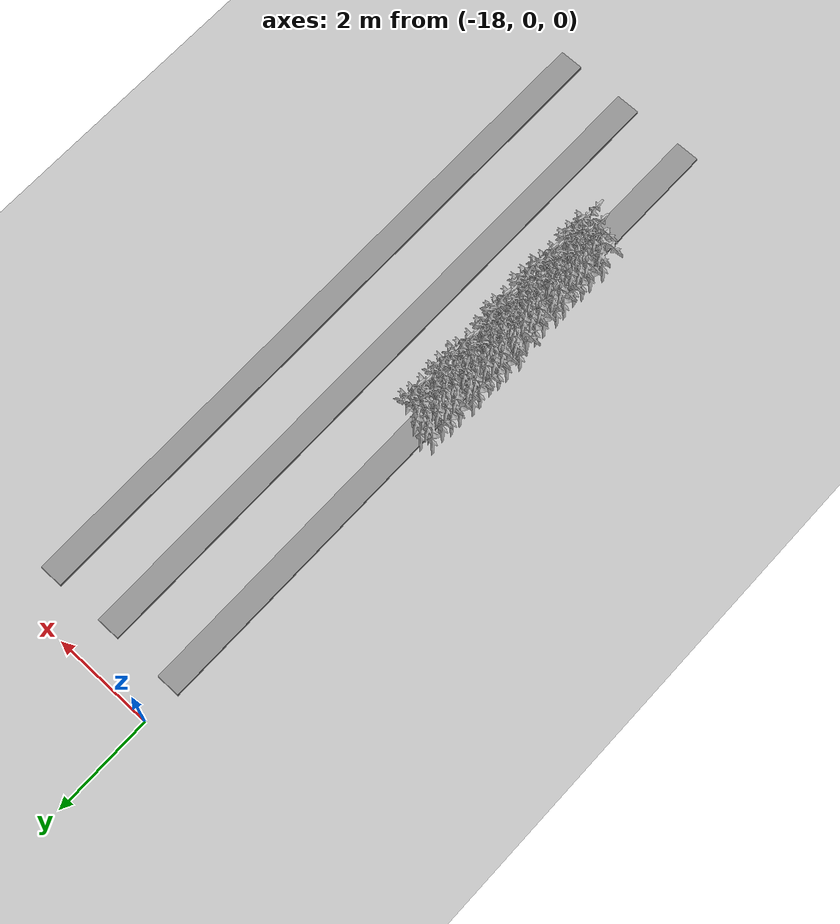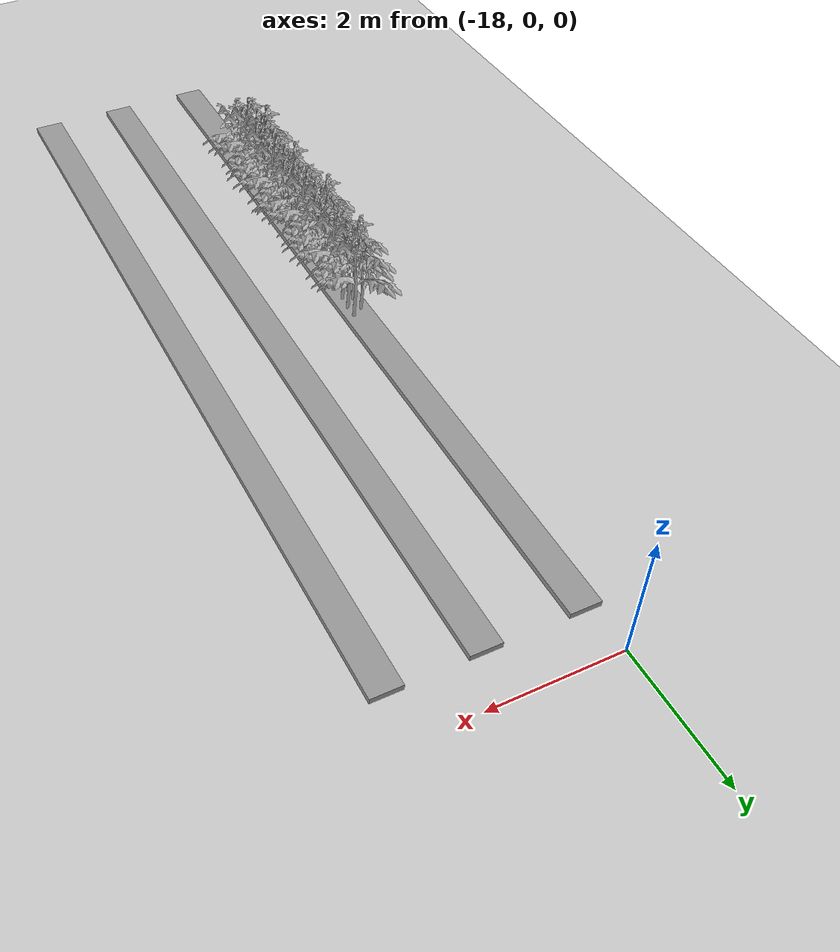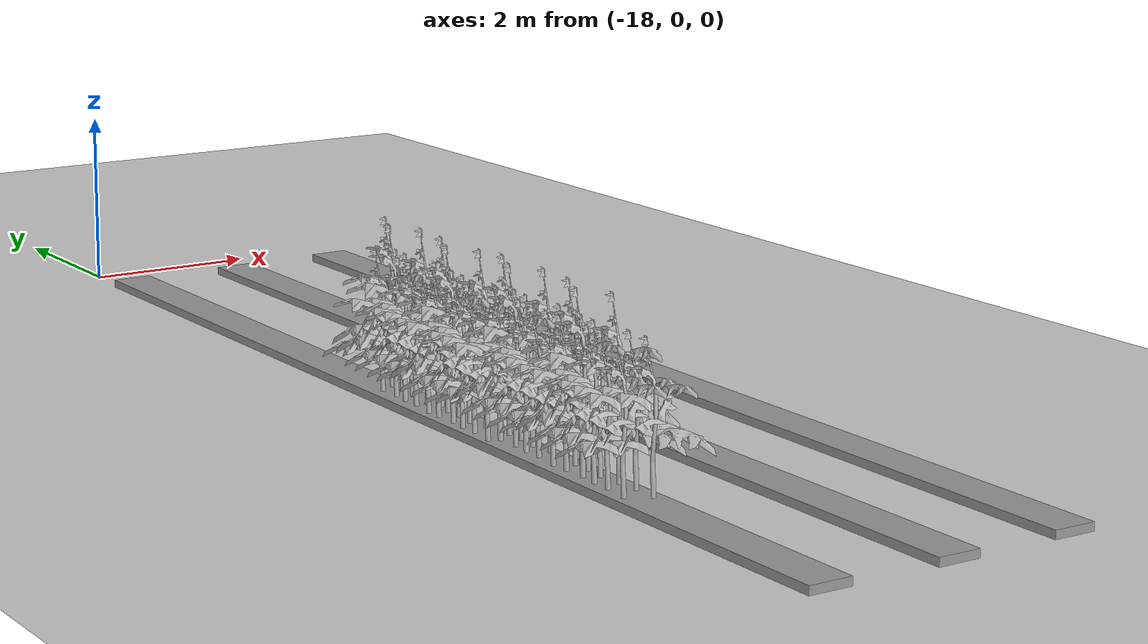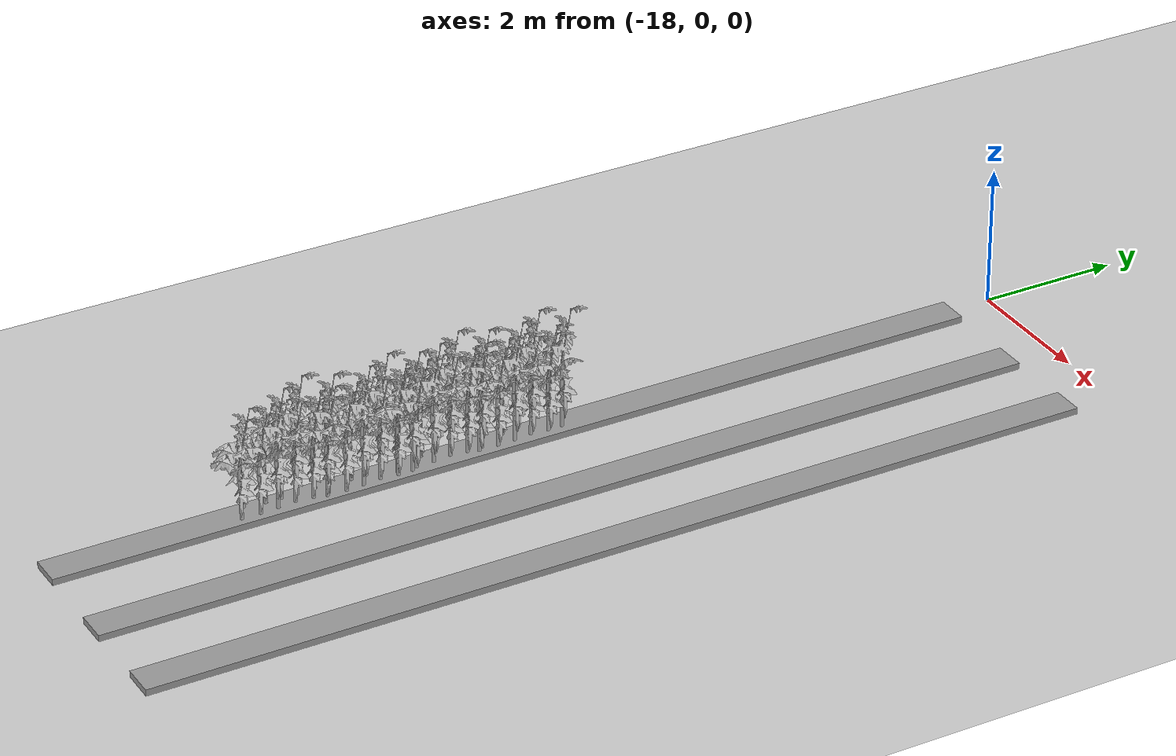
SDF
<sdf version="1.6">
 <world name="default">
  <model name="ground_plane">
   <static>1</static>
   <link name="link">
    <collision name="collision">
     <geometry><plane><normal>0 0 1</normal><size>100 100</size></plane></geometry>
     <surface>
      <contact><collide_bitmask>65535</collide_bitmask></contact>
      <friction><ode><mu>100</mu><mu2>50</mu2></ode></friction>
     </surface>
    </collision>
    <visual name="visual">
     <cast_shadows>0</cast_shadows>
     <geometry><plane><normal>0 0 1</normal><size>100 100</size></plane></geometry>
     <material>
      <script><uri>file://media/materials/scripts/gazebo.material</uri><name>Gazebo/Grey</name></script>
     </material>
    </visual>
   </link>
  </model>
  <model name="Box_24x15W_0">
   <link name="Wall">
    <pose>0 0 0.1985 0 -0 0</pose>
    <inertial>
     <mass>5</mass>
     <inertia><ixx>0.1022</ixx><iyy>0.2197</iyy><izz>0.1905</izz><ixy>0</ixy><ixz>0</ixz><iyz>0</iyz></inertia>
    </inertial>
    <collision name="Wall_Collision">
     <geometry><box><size>0.470639 13.5 0.091294</size></box></geometry>
    </collision>
    <visual name="Wall_Visual">
     <geometry><box><size>0.470639 13.5 0.091294</size></box></geometry>
     <material>
      <script><uri>file://media/materials/scripts/gazebo.material</uri><name>Gazebo/Grey</name></script>
      <ambient>1 1 1 1</ambient>
     </material>
    </visual>
   </link>
   <static>1</static>
   <pose>-16.4388 -7.42472 -0.146343 0 -0 0</pose>
  </model>
  <model name="Box_24x15W">
   <link name="Wall">
    <pose>0 0 0.1985 0 -0 0</pose>
    <inertial>
     <mass>5</mass>
     <inertia><ixx>0.1022</ixx><iyy>0.2197</iyy><izz>0.1905</izz><ixy>0</ixy><ixz>0</ixz><iyz>0</iyz></inertia>
    </inertial>
    <collision name="Wall_Collision">
     <geometry><box><size>0.470639 13.5 0.091294</size></box></geometry>
    </collision>
    <visual name="Wall_Visual">
     <geometry><box><size>0.470639 13.5 0.091294</size></box></geometry>
     <material>
      <script><uri>file://media/materials/scripts/gazebo.material</uri><name>Gazebo/Grey</name></script>
      <ambient>1 1 1 1</ambient>
     </material>
    </visual>
   </link>
   <static>1</static>
   <pose>-17.8665 -7.42472 -0.14031 0 -0 0</pose>
  </model>
  <model name="Box_24x15W_0_clone">
   <link name="Wall">
    <pose>0 0 0.1985 0 -0 0</pose>
    <inertial>
     <mass>5</mass>
     <inertia><ixx>0.1022</ixx><iyy>0.2197</iyy><izz>0.1905</izz><ixy>0</ixy><ixz>0</ixz><iyz>0</iyz></inertia>
    </inertial>
    <collision name="Wall_Collision">
     <geometry><box><size>0.470639 13.5 0.091294</size></box></geometry>
    </collision>
    <visual name="Wall_Visual">
     <geometry><box><size>0.470639 13.5 0.091294</size></box></geometry>
     <material>
      <script><uri>file://media/materials/scripts/gazebo.material</uri><name>Gazebo/Grey</name></script>
      <ambient>1 1 1 1</ambient>
     </material>
    </visual>
   </link>
   <static>1</static>
   <pose>-15.0728 -7.40963 -0.140264 0 -0 0</pose>
  </model>
  <model name="Front_Plant_1_2">
   <model name="tomato_plant_medium">
    <static>1</static>
    <link name="link">
     <collision name="collision">
      <pose>0 0 0 1.5708 -0 0</pose>
      <geometry><mesh><scale>0.5 0.5 0.5</scale><uri>model://stick/meshes/stick.dae</uri></mesh></geometry>
     </collision>
     <visual name="visual">
      <geometry>
       <mesh><scale>5e-06 5e-06 6e-06</scale><uri>model://tomato_plant_medium/meshes/tomato-plant.dae</uri></mesh>
      </geometry>
     </visual>
    </link>
    <pose>0.087453 -0.595994 0.012396 0 -0 0</pose>
   </model>
   <model name="tomato_plant_medium_0">
    <static>1</static>
    <link name="link">
     <collision name="collision">
      <pose>0 0 0 1.5708 -0 0</pose>
      <geometry><mesh><scale>0.5 0.5 0.5</scale><uri>model://stick/meshes/stick.dae</uri></mesh></geometry>
     </collision>
     <visual name="visual">
      <geometry>
       <mesh><scale>5e-06 5e-06 6e-06</scale><uri>model://tomato_plant_medium/meshes/tomato-plant.dae</uri></mesh>
      </geometry>
     </visual>
    </link>
    <pose>-0.086166 -0.251822 0.012396 0 -0 0</pose>
   </model>
   <model name="tomato_plant_medium_1">
    <static>1</static>
    <link name="link">
     <collision name="collision">
      <pose>0 0 0 1.5708 -0 0</pose>
      <geometry><mesh><scale>0.5 0.5 0.5</scale><uri>model://stick/meshes/stick.dae</uri></mesh></geometry>
     </collision>
     <visual name="visual">
      <geometry>
       <mesh><scale>5e-06 5e-06 6e-06</scale><uri>model://tomato_plant_medium/meshes/tomato-plant.dae</uri></mesh>
      </geometry>
     </visual>
    </link>
    <pose>0.080199 0.118127 0.012396 0 -0 0</pose>
   </model>
   <model name="tomato_plant_small">
    <static>1</static>
    <link name="link">
     <collision name="collision">
      <pose>0 0 0 1.5708 -0 0</pose>
      <geometry><mesh><scale>0.5 0.45 0.5</scale><uri>model://stick/meshes/stick.dae</uri></mesh></geometry>
     </collision>
     <visual name="visual">
      <geometry>
       <mesh><scale>5e-06 5e-06 5e-06</scale><uri>model://tomato_plant_small/meshes/tomato-plant.dae</uri></mesh>
      </geometry>
     </visual>
    </link>
    <pose>0.099683 -1.12011 0.012396 0 -0 0</pose>
   </model>
   <model name="tomato_plant_small_0">
    <static>1</static>
    <link name="link">
     <collision name="collision">
      <pose>0 0 0 1.5708 -0 0</pose>
      <geometry><mesh><scale>0.5 0.45 0.5</scale><uri>model://stick/meshes/stick.dae</uri></mesh></geometry>
     </collision>
     <visual name="visual">
      <geometry>
       <mesh><scale>5e-06 5e-06 5e-06</scale><uri>model://tomato_plant_small/meshes/tomato-plant.dae</uri></mesh>
      </geometry>
     </visual>
    </link>
    <pose>-0.138771 -0.983982 0.012396 0 -0 0</pose>
   </model>
   <model name="tomato_plant_small_1">
    <static>1</static>
    <link name="link">
     <collision name="collision">
      <pose>0 0 0 1.5708 -0 0</pose>
      <geometry><mesh><scale>0.5 0.45 0.5</scale><uri>model://stick/meshes/stick.dae</uri></mesh></geometry>
     </collision>
     <visual name="visual">
      <geometry>
       <mesh><scale>5e-06 5e-06 5e-06</scale><uri>model://tomato_plant_small/meshes/tomato-plant.dae</uri></mesh>
      </geometry>
     </visual>
    </link>
    <pose>0.101334 -0.848814 0.012396 0 -0 0</pose>
   </model>
   <model name="tomato_plant_small_2">
    <static>1</static>
    <link name="link">
     <collision name="collision">
      <pose>0 0 0 1.5708 -0 0</pose>
      <geometry><mesh><scale>0.5 0.45 0.5</scale><uri>model://stick/meshes/stick.dae</uri></mesh></geometry>
     </collision>
     <visual name="visual">
      <geometry>
       <mesh><scale>5e-06 5e-06 5e-06</scale><uri>model://tomato_plant_small/meshes/tomato-plant.dae</uri></mesh>
      </geometry>
     </visual>
    </link>
    <pose>-0.103369 -0.683189 0.012396 0 -0 0</pose>
   </model>
   <model name="tomato_plant_small_3">
    <static>1</static>
    <link name="link">
     <collision name="collision">
      <pose>0 0 0 1.5708 -0 0</pose>
      <geometry><mesh><scale>0.5 0.45 0.5</scale><uri>model://stick/meshes/stick.dae</uri></mesh></geometry>
     </collision>
     <visual name="visual">
      <geometry>
       <mesh><scale>5e-06 5e-06 5e-06</scale><uri>model://tomato_plant_small/meshes/tomato-plant.dae</uri></mesh>
      </geometry>
     </visual>
    </link>
    <pose>-0.104381 -0.464811 0.012396 0 -0 0</pose>
   </model>
   <model name="tomato_plant_small_4">
    <static>1</static>
    <link name="link">
     <collision name="collision">
      <pose>0 0 0 1.5708 -0 0</pose>
      <geometry><mesh><scale>0.5 0.45 0.5</scale><uri>model://stick/meshes/stick.dae</uri></mesh></geometry>
     </collision>
     <visual name="visual">
      <geometry>
       <mesh><scale>5e-06 5e-06 5e-06</scale><uri>model://tomato_plant_small/meshes/tomato-plant.dae</uri></mesh>
      </geometry>
     </visual>
    </link>
    <pose>0.055604 -0.336879 0.012396 0 -0 0</pose>
   </model>
   <model name="tomato_plant_small_5">
    <static>1</static>
    <link name="link">
     <collision name="collision">
      <pose>0 0 0 1.5708 -0 0</pose>
      <geometry><mesh><scale>0.5 0.45 0.5</scale><uri>model://stick/meshes/stick.dae</uri></mesh></geometry>
     </collision>
     <visual name="visual">
      <geometry>
       <mesh><scale>5e-06 5e-06 5e-06</scale><uri>model://tomato_plant_small/meshes/tomato-plant.dae</uri></mesh>
      </geometry>
     </visual>
    </link>
    <pose>0.085059 -0.092572 0.012396 0 -0 0</pose>
   </model>
   <model name="tomato_plant_small_6">
    <static>1</static>
    <link name="link">
     <collision name="collision">
      <pose>0 0 0 1.5708 -0 0</pose>
      <geometry><mesh><scale>0.5 0.45 0.5</scale><uri>model://stick/meshes/stick.dae</uri></mesh></geometry>
     </collision>
     <visual name="visual">
      <geometry>
       <mesh><scale>5e-06 5e-06 5e-06</scale><uri>model://tomato_plant_small/meshes/tomato-plant.dae</uri></mesh>
      </geometry>
     </visual>
    </link>
    <pose>-0.096345 0.008888 0.012396 0 -0 0</pose>
   </model>
   <static>0</static>
   <pose>-17.8465 -10.4043 0 0 -0 0</pose>
  </model>
  <model name="Front_Plant_1_3">
   <model name="tomato_plant_medium">
    <static>1</static>
    <link name="link">
     <collision name="collision">
      <pose>0 0 0 1.5708 -0 0</pose>
      <geometry><mesh><scale>0.5 0.5 0.5</scale><uri>model://stick/meshes/stick.dae</uri></mesh></geometry>
     </collision>
     <visual name="visual">
      <geometry>
       <mesh><scale>5e-06 5e-06 6e-06</scale><uri>model://tomato_plant_medium/meshes/tomato-plant.dae</uri></mesh>
      </geometry>
     </visual>
    </link>
    <pose>0.087453 -0.595994 0.012396 0 -0 0</pose>
   </model>
   <model name="tomato_plant_medium_0">
    <static>1</static>
    <link name="link">
     <collision name="collision">
      <pose>0 0 0 1.5708 -0 0</pose>
      <geometry><mesh><scale>0.5 0.5 0.5</scale><uri>model://stick/meshes/stick.dae</uri></mesh></geometry>
     </collision>
     <visual name="visual">
      <geometry>
       <mesh><scale>5e-06 5e-06 6e-06</scale><uri>model://tomato_plant_medium/meshes/tomato-plant.dae</uri></mesh>
      </geometry>
     </visual>
    </link>
    <pose>-0.086166 -0.251822 0.012396 0 -0 0</pose>
   </model>
   <model name="tomato_plant_medium_1">
    <static>1</static>
    <link name="link">
     <collision name="collision">
      <pose>0 0 0 1.5708 -0 0</pose>
      <geometry><mesh><scale>0.5 0.5 0.5</scale><uri>model://stick/meshes/stick.dae</uri></mesh></geometry>
     </collision>
     <visual name="visual">
      <geometry>
       <mesh><scale>5e-06 5e-06 6e-06</scale><uri>model://tomato_plant_medium/meshes/tomato-plant.dae</uri></mesh>
      </geometry>
     </visual>
    </link>
    <pose>0.080199 0.118127 0.012396 0 -0 0</pose>
   </model>
   <model name="tomato_plant_small">
    <static>1</static>
    <link name="link">
     <collision name="collision">
      <pose>0 0 0 1.5708 -0 0</pose>
      <geometry><mesh><scale>0.5 0.45 0.5</scale><uri>model://stick/meshes/stick.dae</uri></mesh></geometry>
     </collision>
     <visual name="visual">
      <geometry>
       <mesh><scale>5e-06 5e-06 5e-06</scale><uri>model://tomato_plant_small/meshes/tomato-plant.dae</uri></mesh>
      </geometry>
     </visual>
    </link>
    <pose>0.099683 -1.12011 0.012396 0 -0 0</pose>
   </model>
   <model name="tomato_plant_small_0">
    <static>1</static>
    <link name="link">
     <collision name="collision">
      <pose>0 0 0 1.5708 -0 0</pose>
      <geometry><mesh><scale>0.5 0.45 0.5</scale><uri>model://stick/meshes/stick.dae</uri></mesh></geometry>
     </collision>
     <visual name="visual">
      <geometry>
       <mesh><scale>5e-06 5e-06 5e-06</scale><uri>model://tomato_plant_small/meshes/tomato-plant.dae</uri></mesh>
      </geometry>
     </visual>
    </link>
    <pose>-0.138771 -0.983982 0.012396 0 -0 0</pose>
   </model>
   <model name="tomato_plant_small_1">
    <static>1</static>
    <link name="link">
     <collision name="collision">
      <pose>0 0 0 1.5708 -0 0</pose>
      <geometry><mesh><scale>0.5 0.45 0.5</scale><uri>model://stick/meshes/stick.dae</uri></mesh></geometry>
     </collision>
     <visual name="visual">
      <geometry>
       <mesh><scale>5e-06 5e-06 5e-06</scale><uri>model://tomato_plant_small/meshes/tomato-plant.dae</uri></mesh>
      </geometry>
     </visual>
    </link>
    <pose>0.101334 -0.848814 0.012396 0 -0 0</pose>
   </model>
   <model name="tomato_plant_small_2">
    <static>1</static>
    <link name="link">
     <collision name="collision">
      <pose>0 0 0 1.5708 -0 0</pose>
      <geometry><mesh><scale>0.5 0.45 0.5</scale><uri>model://stick/meshes/stick.dae</uri></mesh></geometry>
     </collision>
     <visual name="visual">
      <geometry>
       <mesh><scale>5e-06 5e-06 5e-06</scale><uri>model://tomato_plant_small/meshes/tomato-plant.dae</uri></mesh>
      </geometry>
     </visual>
    </link>
    <pose>-0.103369 -0.683189 0.012396 0 -0 0</pose>
   </model>
   <model name="tomato_plant_small_3">
    <static>1</static>
    <link name="link">
     <collision name="collision">
      <pose>0 0 0 1.5708 -0 0</pose>
      <geometry><mesh><scale>0.5 0.45 0.5</scale><uri>model://stick/meshes/stick.dae</uri></mesh></geometry>
     </collision>
     <visual name="visual">
      <geometry>
       <mesh><scale>5e-06 5e-06 5e-06</scale><uri>model://tomato_plant_small/meshes/tomato-plant.dae</uri></mesh>
      </geometry>
     </visual>
    </link>
    <pose>-0.104381 -0.464811 0.012396 0 -0 0</pose>
   </model>
   <model name="tomato_plant_small_4">
    <static>1</static>
    <link name="link">
     <collision name="collision">
      <pose>0 0 0 1.5708 -0 0</pose>
      <geometry><mesh><scale>0.5 0.45 0.5</scale><uri>model://stick/meshes/stick.dae</uri></mesh></geometry>
     </collision>
     <visual name="visual">
      <geometry>
       <mesh><scale>5e-06 5e-06 5e-06</scale><uri>model://tomato_plant_small/meshes/tomato-plant.dae</uri></mesh>
      </geometry>
     </visual>
    </link>
    <pose>0.055604 -0.336879 0.012396 0 -0 0</pose>
   </model>
   <model name="tomato_plant_small_5">
    <static>1</static>
    <link name="link">
     <collision name="collision">
      <pose>0 0 0 1.5708 -0 0</pose>
      <geometry><mesh><scale>0.5 0.45 0.5</scale><uri>model://stick/meshes/stick.dae</uri></mesh></geometry>
     </collision>
     <visual name="visual">
      <geometry>
       <mesh><scale>5e-06 5e-06 5e-06</scale><uri>model://tomato_plant_small/meshes/tomato-plant.dae</uri></mesh>
      </geometry>
     </visual>
    </link>
    <pose>0.085059 -0.092572 0.012396 0 -0 0</pose>
   </model>
   <model name="tomato_plant_small_6">
    <static>1</static>
    <link name="link">
     <collision name="collision">
      <pose>0 0 0 1.5708 -0 0</pose>
      <geometry><mesh><scale>0.5 0.45 0.5</scale><uri>model://stick/meshes/stick.dae</uri></mesh></geometry>
     </collision>
     <visual name="visual">
      <geometry>
       <mesh><scale>5e-06 5e-06 5e-06</scale><uri>model://tomato_plant_small/meshes/tomato-plant.dae</uri></mesh>
      </geometry>
     </visual>
    </link>
    <pose>-0.096345 0.008888 0.012396 0 -0 0</pose>
   </model>
   <static>0</static>
   <pose>-17.812 -9.20246 0 0 -0 0</pose>
  </model>
  <model name="Front_Plant_1_4">
   <model name="tomato_plant_medium">
    <static>1</static>
    <link name="link">
     <collision name="collision">
      <pose>0 0 0 1.5708 -0 0</pose>
      <geometry><mesh><scale>0.5 0.5 0.5</scale><uri>model://stick/meshes/stick.dae</uri></mesh></geometry>
     </collision>
     <visual name="visual">
      <geometry>
       <mesh><scale>5e-06 5e-06 6e-06</scale><uri>model://tomato_plant_medium/meshes/tomato-plant.dae</uri></mesh>
      </geometry>
     </visual>
    </link>
    <pose>0.087453 -0.595994 0.012396 0 -0 0</pose>
   </model>
   <model name="tomato_plant_medium_0">
    <static>1</static>
    <link name="link">
     <collision name="collision">
      <pose>0 0 0 1.5708 -0 0</pose>
      <geometry><mesh><scale>0.5 0.5 0.5</scale><uri>model://stick/meshes/stick.dae</uri></mesh></geometry>
     </collision>
     <visual name="visual">
      <geometry>
       <mesh><scale>5e-06 5e-06 6e-06</scale><uri>model://tomato_plant_medium/meshes/tomato-plant.dae</uri></mesh>
      </geometry>
     </visual>
    </link>
    <pose>-0.086166 -0.251822 0.012396 0 -0 0</pose>
   </model>
   <model name="tomato_plant_medium_1">
    <static>1</static>
    <link name="link">
     <collision name="collision">
      <pose>0 0 0 1.5708 -0 0</pose>
      <geometry><mesh><scale>0.5 0.5 0.5</scale><uri>model://stick/meshes/stick.dae</uri></mesh></geometry>
     </collision>
     <visual name="visual">
      <geometry>
       <mesh><scale>5e-06 5e-06 6e-06</scale><uri>model://tomato_plant_medium/meshes/tomato-plant.dae</uri></mesh>
      </geometry>
     </visual>
    </link>
    <pose>0.080199 0.118127 0.012396 0 -0 0</pose>
   </model>
   <model name="tomato_plant_small">
    <static>1</static>
    <link name="link">
     <collision name="collision">
      <pose>0 0 0 1.5708 -0 0</pose>
      <geometry><mesh><scale>0.5 0.45 0.5</scale><uri>model://stick/meshes/stick.dae</uri></mesh></geometry>
     </collision>
     <visual name="visual">
      <geometry>
       <mesh><scale>5e-06 5e-06 5e-06</scale><uri>model://tomato_plant_small/meshes/tomato-plant.dae</uri></mesh>
      </geometry>
     </visual>
    </link>
    <pose>0.099683 -1.12011 0.012396 0 -0 0</pose>
   </model>
   <model name="tomato_plant_small_0">
    <static>1</static>
    <link name="link">
     <collision name="collision">
      <pose>0 0 0 1.5708 -0 0</pose>
      <geometry><mesh><scale>0.5 0.45 0.5</scale><uri>model://stick/meshes/stick.dae</uri></mesh></geometry>
     </collision>
     <visual name="visual">
      <geometry>
       <mesh><scale>5e-06 5e-06 5e-06</scale><uri>model://tomato_plant_small/meshes/tomato-plant.dae</uri></mesh>
      </geometry>
     </visual>
    </link>
    <pose>-0.138771 -0.983982 0.012396 0 -0 0</pose>
   </model>
   <model name="tomato_plant_small_1">
    <static>1</static>
    <link name="link">
     <collision name="collision">
      <pose>0 0 0 1.5708 -0 0</pose>
      <geometry><mesh><scale>0.5 0.45 0.5</scale><uri>model://stick/meshes/stick.dae</uri></mesh></geometry>
     </collision>
     <visual name="visual">
      <geometry>
       <mesh><scale>5e-06 5e-06 5e-06</scale><uri>model://tomato_plant_small/meshes/tomato-plant.dae</uri></mesh>
      </geometry>
     </visual>
    </link>
    <pose>0.101334 -0.848814 0.012396 0 -0 0</pose>
   </model>
   <model name="tomato_plant_small_2">
    <static>1</static>
    <link name="link">
     <collision name="collision">
      <pose>0 0 0 1.5708 -0 0</pose>
      <geometry><mesh><scale>0.5 0.45 0.5</scale><uri>model://stick/meshes/stick.dae</uri></mesh></geometry>
     </collision>
     <visual name="visual">
      <geometry>
       <mesh><scale>5e-06 5e-06 5e-06</scale><uri>model://tomato_plant_small/meshes/tomato-plant.dae</uri></mesh>
      </geometry>
     </visual>
    </link>
    <pose>-0.103369 -0.683189 0.012396 0 -0 0</pose>
   </model>
   <model name="tomato_plant_small_3">
    <static>1</static>
    <link name="link">
     <collision name="collision">
      <pose>0 0 0 1.5708 -0 0</pose>
      <geometry><mesh><scale>0.5 0.45 0.5</scale><uri>model://stick/meshes/stick.dae</uri></mesh></geometry>
     </collision>
     <visual name="visual">
      <geometry>
       <mesh><scale>5e-06 5e-06 5e-06</scale><uri>model://tomato_plant_small/meshes/tomato-plant.dae</uri></mesh>
      </geometry>
     </visual>
    </link>
    <pose>-0.104381 -0.464811 0.012396 0 -0 0</pose>
   </model>
   <model name="tomato_plant_small_4">
    <static>1</static>
    <link name="link">
     <collision name="collision">
      <pose>0 0 0 1.5708 -0 0</pose>
      <geometry><mesh><scale>0.5 0.45 0.5</scale><uri>model://stick/meshes/stick.dae</uri></mesh></geometry>
     </collision>
     <visual name="visual">
      <geometry>
       <mesh><scale>5e-06 5e-06 5e-06</scale><uri>model://tomato_plant_small/meshes/tomato-plant.dae</uri></mesh>
      </geometry>
     </visual>
    </link>
    <pose>0.055604 -0.336879 0.012396 0 -0 0</pose>
   </model>
   <model name="tomato_plant_small_5">
    <static>1</static>
    <link name="link">
     <collision name="collision">
      <pose>0 0 0 1.5708 -0 0</pose>
      <geometry><mesh><scale>0.5 0.45 0.5</scale><uri>model://stick/meshes/stick.dae</uri></mesh></geometry>
     </collision>
     <visual name="visual">
      <geometry>
       <mesh><scale>5e-06 5e-06 5e-06</scale><uri>model://tomato_plant_small/meshes/tomato-plant.dae</uri></mesh>
      </geometry>
     </visual>
    </link>
    <pose>0.085059 -0.092572 0.012396 0 -0 0</pose>
   </model>
   <model name="tomato_plant_small_6">
    <static>1</static>
    <link name="link">
     <collision name="collision">
      <pose>0 0 0 1.5708 -0 0</pose>
      <geometry><mesh><scale>0.5 0.45 0.5</scale><uri>model://stick/meshes/stick.dae</uri></mesh></geometry>
     </collision>
     <visual name="visual">
      <geometry>
       <mesh><scale>5e-06 5e-06 5e-06</scale><uri>model://tomato_plant_small/meshes/tomato-plant.dae</uri></mesh>
      </geometry>
     </visual>
    </link>
    <pose>-0.096345 0.008888 0.012396 0 -0 0</pose>
   </model>
   <static>0</static>
   <pose>-17.8802 -8.15623 0 0 -0 0</pose>
  </model>
  <model name="Front_Plant_1_5">
   <model name="tomato_plant_medium">
    <static>1</static>
    <link name="link">
     <collision name="collision">
      <pose>0 0 0 1.5708 -0 0</pose>
      <geometry><mesh><scale>0.5 0.5 0.5</scale><uri>model://stick/meshes/stick.dae</uri></mesh></geometry>
     </collision>
     <visual name="visual">
      <geometry>
       <mesh><scale>5e-06 5e-06 6e-06</scale><uri>model://tomato_plant_medium/meshes/tomato-plant.dae</uri></mesh>
      </geometry>
     </visual>
    </link>
    <pose>0.087453 -0.595994 0.012396 0 -0 0</pose>
   </model>
   <model name="tomato_plant_medium_0">
    <static>1</static>
    <link name="link">
     <collision name="collision">
      <pose>0 0 0 1.5708 -0 0</pose>
      <geometry><mesh><scale>0.5 0.5 0.5</scale><uri>model://stick/meshes/stick.dae</uri></mesh></geometry>
     </collision>
     <visual name="visual">
      <geometry>
       <mesh><scale>5e-06 5e-06 6e-06</scale><uri>model://tomato_plant_medium/meshes/tomato-plant.dae</uri></mesh>
      </geometry>
     </visual>
    </link>
    <pose>-0.086166 -0.251822 0.012396 0 -0 0</pose>
   </model>
   <model name="tomato_plant_medium_1">
    <static>1</static>
    <link name="link">
     <collision name="collision">
      <pose>0 0 0 1.5708 -0 0</pose>
      <geometry><mesh><scale>0.5 0.5 0.5</scale><uri>model://stick/meshes/stick.dae</uri></mesh></geometry>
     </collision>
     <visual name="visual">
      <geometry>
       <mesh><scale>5e-06 5e-06 6e-06</scale><uri>model://tomato_plant_medium/meshes/tomato-plant.dae</uri></mesh>
      </geometry>
     </visual>
    </link>
    <pose>0.080199 0.118127 0.012396 0 -0 0</pose>
   </model>
   <model name="tomato_plant_small">
    <static>1</static>
    <link name="link">
     <collision name="collision">
      <pose>0 0 0 1.5708 -0 0</pose>
      <geometry><mesh><scale>0.5 0.45 0.5</scale><uri>model://stick/meshes/stick.dae</uri></mesh></geometry>
     </collision>
     <visual name="visual">
      <geometry>
       <mesh><scale>5e-06 5e-06 5e-06</scale><uri>model://tomato_plant_small/meshes/tomato-plant.dae</uri></mesh>
      </geometry>
     </visual>
    </link>
    <pose>0.099683 -1.12011 0.012396 0 -0 0</pose>
   </model>
   <model name="tomato_plant_small_0">
    <static>1</static>
    <link name="link">
     <collision name="collision">
      <pose>0 0 0 1.5708 -0 0</pose>
      <geometry><mesh><scale>0.5 0.45 0.5</scale><uri>model://stick/meshes/stick.dae</uri></mesh></geometry>
     </collision>
     <visual name="visual">
      <geometry>
       <mesh><scale>5e-06 5e-06 5e-06</scale><uri>model://tomato_plant_small/meshes/tomato-plant.dae</uri></mesh>
      </geometry>
     </visual>
    </link>
    <pose>-0.138771 -0.983982 0.012396 0 -0 0</pose>
   </model>
   <model name="tomato_plant_small_1">
    <static>1</static>
    <link name="link">
     <collision name="collision">
      <pose>0 0 0 1.5708 -0 0</pose>
      <geometry><mesh><scale>0.5 0.45 0.5</scale><uri>model://stick/meshes/stick.dae</uri></mesh></geometry>
     </collision>
     <visual name="visual">
      <geometry>
       <mesh><scale>5e-06 5e-06 5e-06</scale><uri>model://tomato_plant_small/meshes/tomato-plant.dae</uri></mesh>
      </geometry>
     </visual>
    </link>
    <pose>0.101334 -0.848814 0.012396 0 -0 0</pose>
   </model>
   <model name="tomato_plant_small_2">
    <static>1</static>
    <link name="link">
     <collision name="collision">
      <pose>0 0 0 1.5708 -0 0</pose>
      <geometry><mesh><scale>0.5 0.45 0.5</scale><uri>model://stick/meshes/stick.dae</uri></mesh></geometry>
     </collision>
     <visual name="visual">
      <geometry>
       <mesh><scale>5e-06 5e-06 5e-06</scale><uri>model://tomato_plant_small/meshes/tomato-plant.dae</uri></mesh>
      </geometry>
     </visual>
    </link>
    <pose>-0.103369 -0.683189 0.012396 0 -0 0</pose>
   </model>
   <model name="tomato_plant_small_3">
    <static>1</static>
    <link name="link">
     <collision name="collision">
      <pose>0 0 0 1.5708 -0 0</pose>
      <geometry><mesh><scale>0.5 0.45 0.5</scale><uri>model://stick/meshes/stick.dae</uri></mesh></geometry>
     </collision>
     <visual name="visual">
      <geometry>
       <mesh><scale>5e-06 5e-06 5e-06</scale><uri>model://tomato_plant_small/meshes/tomato-plant.dae</uri></mesh>
      </geometry>
     </visual>
    </link>
    <pose>-0.104381 -0.464811 0.012396 0 -0 0</pose>
   </model>
   <model name="tomato_plant_small_4">
    <static>1</static>
    <link name="link">
     <collision name="collision">
      <pose>0 0 0 1.5708 -0 0</pose>
      <geometry><mesh><scale>0.5 0.45 0.5</scale><uri>model://stick/meshes/stick.dae</uri></mesh></geometry>
     </collision>
     <visual name="visual">
      <geometry>
       <mesh><scale>5e-06 5e-06 5e-06</scale><uri>model://tomato_plant_small/meshes/tomato-plant.dae</uri></mesh>
      </geometry>
     </visual>
    </link>
    <pose>0.055604 -0.336879 0.012396 0 -0 0</pose>
   </model>
   <model name="tomato_plant_small_5">
    <static>1</static>
    <link name="link">
     <collision name="collision">
      <pose>0 0 0 1.5708 -0 0</pose>
      <geometry><mesh><scale>0.5 0.45 0.5</scale><uri>model://stick/meshes/stick.dae</uri></mesh></geometry>
     </collision>
     <visual name="visual">
      <geometry>
       <mesh><scale>5e-06 5e-06 5e-06</scale><uri>model://tomato_plant_small/meshes/tomato-plant.dae</uri></mesh>
      </geometry>
     </visual>
    </link>
    <pose>0.085059 -0.092572 0.012396 0 -0 0</pose>
   </model>
   <model name="tomato_plant_small_6">
    <static>1</static>
    <link name="link">
     <collision name="collision">
      <pose>0 0 0 1.5708 -0 0</pose>
      <geometry><mesh><scale>0.5 0.45 0.5</scale><uri>model://stick/meshes/stick.dae</uri></mesh></geometry>
     </collision>
     <visual name="visual">
      <geometry>
       <mesh><scale>5e-06 5e-06 5e-06</scale><uri>model://tomato_plant_small/meshes/tomato-plant.dae</uri></mesh>
      </geometry>
     </visual>
    </link>
    <pose>-0.096345 0.008888 0.012396 0 -0 0</pose>
   </model>
   <static>0</static>
   <pose>-17.8443 -6.97996 0 0 -0 0</pose>
  </model>
 </world>
</sdf>
